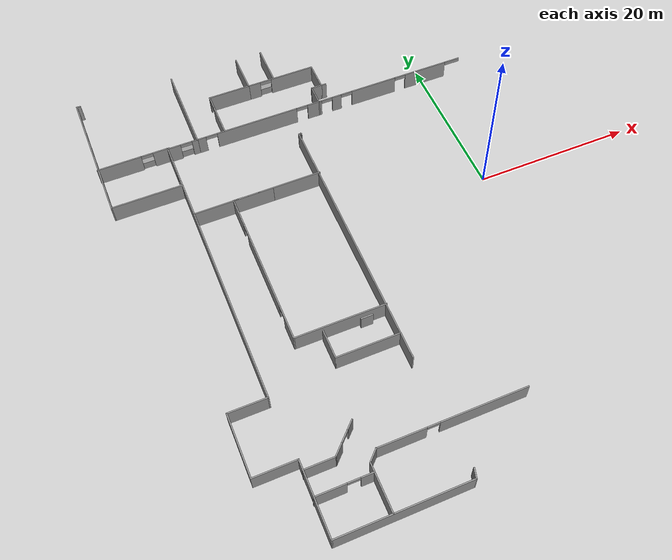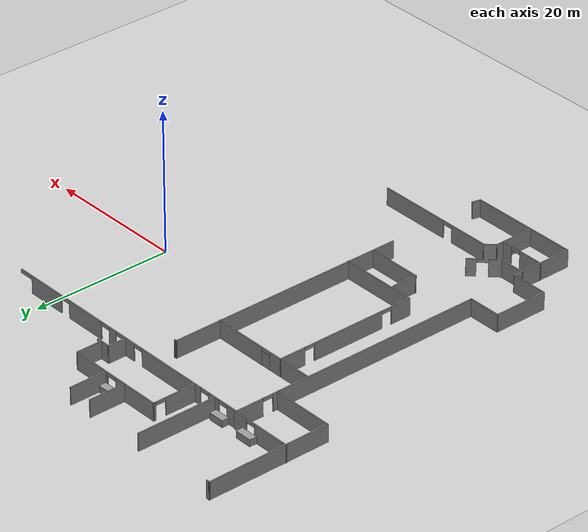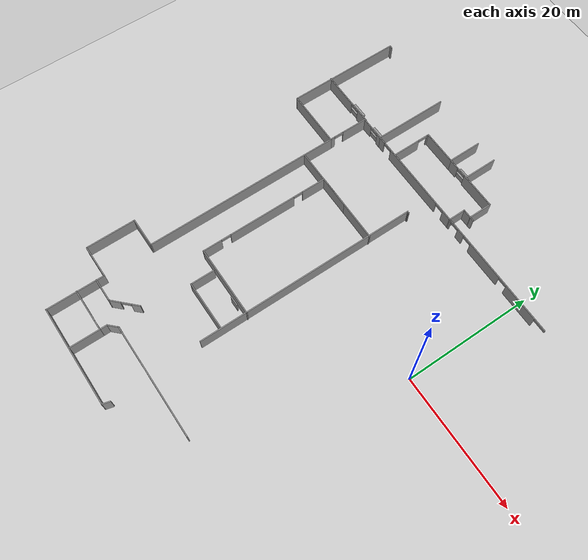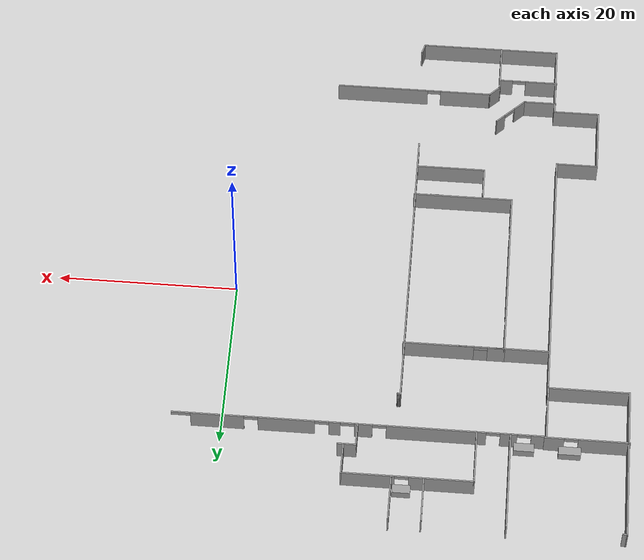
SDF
<sdf version="1.6">
 <world name="default">
  <model name="ground_plane">
   <static>1</static>
   <link name="link">
    <collision name="collision">
     <geometry><plane><normal>0 0 1</normal><size>100 100</size></plane></geometry>
     <surface><friction><ode><mu>100</mu><mu2>50</mu2></ode></friction></surface>
    </collision>
    <visual name="visual">
     <cast_shadows>0</cast_shadows>
     <geometry><plane><normal>0 0 1</normal><size>100 100</size></plane></geometry>
     <material>
      <script><uri>file://media/materials/scripts/gazebo.material</uri><name>Gazebo/Grey</name></script>
     </material>
    </visual>
   </link>
  </model>
  <model name="aule_N">
   <pose>0.1887 -1.4289 0 0 -0 0</pose>
   <link name="Door_6">
    <collision name="Door_6_Collision">
     <geometry><box><size>1.5 0.17 2</size></box></geometry>
     <pose>0 0 1 0 -0 0</pose>
    </collision>
    <visual name="Door_6_Visual">
     <pose>0 0 1 0 -0 0</pose>
     <geometry><box><size>1.5 0.17 2</size></box></geometry>
     <material>
      <script><uri>file://media/materials/scripts/gazebo.material</uri><name>Gazebo/Grey</name></script>
     </material>
    </visual>
    <pose>-21.8785 -12.0586 0 0 -0 0</pose>
   </link>
   <link name="Wall_108">
    <collision name="Wall_108_Collision">
     <geometry><box><size>11.5 0.15 2.5</size></box></geometry>
     <pose>0 0 1.25 0 -0 0</pose>
    </collision>
    <visual name="Wall_108_Visual">
     <pose>0 0 1.25 0 -0 0</pose>
     <geometry><box><size>11.5 0.15 2.5</size></box></geometry>
     <material>
      <script><uri>file://media/materials/scripts/gazebo.material</uri><name>Gazebo/Grey</name></script>
      <ambient>1 1 1 1</ambient>
     </material>
    </visual>
    <pose>-31.5274 25.2751 0 0 0 -1.5708</pose>
   </link>
   <link name="Wall_109">
    <pose>-33.4524 19.6001 0 0 -0 3.14159</pose>
    <visual name="Wall_109_Visual_0">
     <pose>-1.60516 0 1.25 0 -0 0</pose>
     <geometry><box><size>0.789669 0.15 2.5</size></box></geometry>
     <material>
      <script><uri>file://media/materials/scripts/gazebo.material</uri><name>Gazebo/Grey</name></script>
      <ambient>1 1 1 1</ambient>
     </material>
    </visual>
    <collision name="Wall_109_Collision_0">
     <geometry><box><size>0.789669 0.15 2.5</size></box></geometry>
     <pose>-1.60516 0 1.25 0 -0 0</pose>
    </collision>
    <visual name="Wall_109_Visual_1">
     <pose>1.14484 0 1.25 0 -0 0</pose>
     <geometry><box><size>1.71033 0.15 2.5</size></box></geometry>
     <material>
      <script><uri>file://media/materials/scripts/gazebo.material</uri><name>Gazebo/Grey</name></script>
      <ambient>1 1 1 1</ambient>
     </material>
    </visual>
    <collision name="Wall_109_Collision_1">
     <geometry><box><size>1.71033 0.15 2.5</size></box></geometry>
     <pose>1.14484 0 1.25 0 -0 0</pose>
    </collision>
    <visual name="Wall_109_Visual_2">
     <pose>-0.460331 0 2.25 0 -0 0</pose>
     <geometry><box><size>1.5 0.15 0.5</size></box></geometry>
     <material>
      <script><uri>file://media/materials/scripts/gazebo.material</uri><name>Gazebo/Grey</name></script>
      <ambient>1 1 1 1</ambient>
     </material>
    </visual>
    <collision name="Wall_109_Collision_2">
     <geometry><box><size>1.5 0.15 0.5</size></box></geometry>
     <pose>-0.460331 0 2.25 0 -0 0</pose>
    </collision>
   </link>
   <link name="Wall_110">
    <pose>-35.3774 16.4251 0 0 0 -1.5708</pose>
    <visual name="Wall_110_Visual_0">
     <pose>-1.20846 0 1.25 0 -0 0</pose>
     <geometry><box><size>4.08308 0.15 2.5</size></box></geometry>
     <material>
      <script><uri>file://media/materials/scripts/gazebo.material</uri><name>Gazebo/Grey</name></script>
      <ambient>1 1 1 1</ambient>
     </material>
    </visual>
    <collision name="Wall_110_Collision_0">
     <geometry><box><size>4.08308 0.15 2.5</size></box></geometry>
     <pose>-1.20846 0 1.25 0 -0 0</pose>
    </collision>
    <visual name="Wall_110_Visual_1">
     <pose>2.79154 0 1.25 0 -0 0</pose>
     <geometry><box><size>0.91692 0.15 2.5</size></box></geometry>
     <material>
      <script><uri>file://media/materials/scripts/gazebo.material</uri><name>Gazebo/Grey</name></script>
      <ambient>1 1 1 1</ambient>
     </material>
    </visual>
    <collision name="Wall_110_Collision_1">
     <geometry><box><size>0.91692 0.15 2.5</size></box></geometry>
     <pose>2.79154 0 1.25 0 -0 0</pose>
    </collision>
    <visual name="Wall_110_Visual_2">
     <pose>1.58308 0 2.25 0 -0 0</pose>
     <geometry><box><size>1.5 0.15 0.5</size></box></geometry>
     <material>
      <script><uri>file://media/materials/scripts/gazebo.material</uri><name>Gazebo/Grey</name></script>
      <ambient>1 1 1 1</ambient>
     </material>
    </visual>
    <collision name="Wall_110_Collision_2">
     <geometry><box><size>1.5 0.15 0.5</size></box></geometry>
     <pose>1.58308 0 2.25 0 -0 0</pose>
    </collision>
   </link>
   <link name="Wall_112">
    <pose>-39.7703 19.7027 0 0 -0 0</pose>
    <visual name="Wall_112_Visual_0">
     <pose>-1.82458 0 1.25 0 -0 0</pose>
     <geometry><box><size>5.60084 0.15 2.5</size></box></geometry>
     <material>
      <script><uri>file://media/materials/scripts/gazebo.material</uri><name>Gazebo/Grey</name></script>
      <ambient>1 1 1 1</ambient>
     </material>
    </visual>
    <collision name="Wall_112_Collision_0">
     <geometry><box><size>5.60084 0.15 2.5</size></box></geometry>
     <pose>-1.82458 0 1.25 0 -0 0</pose>
    </collision>
    <visual name="Wall_112_Visual_1">
     <pose>3.55042 0 1.25 0 -0 0</pose>
     <geometry><box><size>2.14915 0.15 2.5</size></box></geometry>
     <material>
      <script><uri>file://media/materials/scripts/gazebo.material</uri><name>Gazebo/Grey</name></script>
      <ambient>1 1 1 1</ambient>
     </material>
    </visual>
    <collision name="Wall_112_Collision_1">
     <geometry><box><size>2.14915 0.15 2.5</size></box></geometry>
     <pose>3.55042 0 1.25 0 -0 0</pose>
    </collision>
    <visual name="Wall_112_Visual_2">
     <pose>1.72585 0 2.25 0 -0 0</pose>
     <geometry><box><size>1.5 0.15 0.5</size></box></geometry>
     <material>
      <script><uri>file://media/materials/scripts/gazebo.material</uri><name>Gazebo/Grey</name></script>
      <ambient>1 1 1 1</ambient>
     </material>
    </visual>
    <collision name="Wall_112_Collision_2">
     <geometry><box><size>1.5 0.15 0.5</size></box></geometry>
     <pose>1.72585 0 2.25 0 -0 0</pose>
    </collision>
   </link>
   <link name="Wall_117">
    <pose>-13.2274 19.6001 0 0 -0 0</pose>
    <visual name="Wall_117_Visual_0">
     <pose>-17.7796 0 1.25 0 -0 0</pose>
     <geometry><box><size>1.19077 0.15 2.5</size></box></geometry>
     <material>
      <script><uri>file://media/materials/scripts/gazebo.material</uri><name>Gazebo/Grey</name></script>
      <ambient>1 1 1 1</ambient>
     </material>
    </visual>
    <collision name="Wall_117_Collision_0">
     <geometry><box><size>1.19077 0.15 2.5</size></box></geometry>
     <pose>-17.7796 0 1.25 0 -0 0</pose>
    </collision>
    <visual name="Wall_117_Visual_1">
     <pose>-10.3016 0 1.25 0 -0 0</pose>
     <geometry><box><size>10.7652 0.15 2.5</size></box></geometry>
     <material>
      <script><uri>file://media/materials/scripts/gazebo.material</uri><name>Gazebo/Grey</name></script>
      <ambient>1 1 1 1</ambient>
     </material>
    </visual>
    <collision name="Wall_117_Collision_1">
     <geometry><box><size>10.7652 0.15 2.5</size></box></geometry>
     <pose>-10.3016 0 1.25 0 -0 0</pose>
    </collision>
    <visual name="Wall_117_Visual_2">
     <pose>-2.44962 0 1.25 0 -0 0</pose>
     <geometry><box><size>1.93872 0.15 2.5</size></box></geometry>
     <material>
      <script><uri>file://media/materials/scripts/gazebo.material</uri><name>Gazebo/Grey</name></script>
      <ambient>1 1 1 1</ambient>
     </material>
    </visual>
    <collision name="Wall_117_Collision_2">
     <geometry><box><size>1.93872 0.15 2.5</size></box></geometry>
     <pose>-2.44962 0 1.25 0 -0 0</pose>
    </collision>
    <visual name="Wall_117_Visual_3">
     <pose>0.6526 0 1.25 0 -0 0</pose>
     <geometry><box><size>1.26572 0.15 2.5</size></box></geometry>
     <material>
      <script><uri>file://media/materials/scripts/gazebo.material</uri><name>Gazebo/Grey</name></script>
      <ambient>1 1 1 1</ambient>
     </material>
    </visual>
    <collision name="Wall_117_Collision_3">
     <geometry><box><size>1.26572 0.15 2.5</size></box></geometry>
     <pose>0.6526 0 1.25 0 -0 0</pose>
    </collision>
    <visual name="Wall_117_Visual_4">
     <pose>5.87513 0 1.25 0 -0 0</pose>
     <geometry><box><size>6.17934 0.15 2.5</size></box></geometry>
     <material>
      <script><uri>file://media/materials/scripts/gazebo.material</uri><name>Gazebo/Grey</name></script>
      <ambient>1 1 1 1</ambient>
     </material>
    </visual>
    <collision name="Wall_117_Collision_4">
     <geometry><box><size>6.17934 0.15 2.5</size></box></geometry>
     <pose>5.87513 0 1.25 0 -0 0</pose>
    </collision>
    <visual name="Wall_117_Visual_5">
     <pose>13.3706 0 1.25 0 -0 0</pose>
     <geometry><box><size>5.81158 0.15 2.5</size></box></geometry>
     <material>
      <script><uri>file://media/materials/scripts/gazebo.material</uri><name>Gazebo/Grey</name></script>
      <ambient>1 1 1 1</ambient>
     </material>
    </visual>
    <collision name="Wall_117_Collision_5">
     <geometry><box><size>5.81158 0.15 2.5</size></box></geometry>
     <pose>13.3706 0 1.25 0 -0 0</pose>
    </collision>
    <visual name="Wall_117_Visual_6">
     <pose>-16.4342 0 2.25 0 -0 0</pose>
     <geometry><box><size>1.5 0.15 0.5</size></box></geometry>
     <material>
      <script><uri>file://media/materials/scripts/gazebo.material</uri><name>Gazebo/Grey</name></script>
      <ambient>1 1 1 1</ambient>
     </material>
    </visual>
    <collision name="Wall_117_Collision_6">
     <geometry><box><size>1.5 0.15 0.5</size></box></geometry>
     <pose>-16.4342 0 2.25 0 -0 0</pose>
    </collision>
    <visual name="Wall_117_Visual_7">
     <pose>-4.16898 0 2.25 0 -0 0</pose>
     <geometry><box><size>1.5 0.15 0.5</size></box></geometry>
     <material>
      <script><uri>file://media/materials/scripts/gazebo.material</uri><name>Gazebo/Grey</name></script>
      <ambient>1 1 1 1</ambient>
     </material>
    </visual>
    <collision name="Wall_117_Collision_7">
     <geometry><box><size>1.5 0.15 0.5</size></box></geometry>
     <pose>-4.16898 0 2.25 0 -0 0</pose>
    </collision>
    <visual name="Wall_117_Visual_8">
     <pose>-0.73026 0 2.25 0 -0 0</pose>
     <geometry><box><size>1.5 0.15 0.5</size></box></geometry>
     <material>
      <script><uri>file://media/materials/scripts/gazebo.material</uri><name>Gazebo/Grey</name></script>
      <ambient>1 1 1 1</ambient>
     </material>
    </visual>
    <collision name="Wall_117_Collision_8">
     <geometry><box><size>1.5 0.15 0.5</size></box></geometry>
     <pose>-0.73026 0 2.25 0 -0 0</pose>
    </collision>
    <visual name="Wall_117_Visual_9">
     <pose>2.03546 0 2.25 0 -0 0</pose>
     <geometry><box><size>1.5 0.15 0.5</size></box></geometry>
     <material>
      <script><uri>file://media/materials/scripts/gazebo.material</uri><name>Gazebo/Grey</name></script>
      <ambient>1 1 1 1</ambient>
     </material>
    </visual>
    <collision name="Wall_117_Collision_9">
     <geometry><box><size>1.5 0.15 0.5</size></box></geometry>
     <pose>2.03546 0 2.25 0 -0 0</pose>
    </collision>
    <visual name="Wall_117_Visual_10">
     <pose>9.7148 0 2.25 0 -0 0</pose>
     <geometry><box><size>1.5 0.15 0.5</size></box></geometry>
     <material>
      <script><uri>file://media/materials/scripts/gazebo.material</uri><name>Gazebo/Grey</name></script>
      <ambient>1 1 1 1</ambient>
     </material>
    </visual>
    <collision name="Wall_117_Collision_10">
     <geometry><box><size>1.5 0.15 0.5</size></box></geometry>
     <pose>9.7148 0 2.25 0 -0 0</pose>
    </collision>
    <visual name="Wall_117_Visual_11">
     <pose>17.3257 0 2.25 0 -0 0</pose>
     <geometry><box><size>2.09862 0.15 0.5</size></box></geometry>
     <material>
      <script><uri>file://media/materials/scripts/gazebo.material</uri><name>Gazebo/Grey</name></script>
      <ambient>1 1 1 1</ambient>
     </material>
    </visual>
    <collision name="Wall_117_Collision_11">
     <geometry><box><size>2.09862 0.15 0.5</size></box></geometry>
     <pose>17.3257 0 2.25 0 -0 0</pose>
    </collision>
   </link>
   <link name="Wall_121">
    <collision name="Wall_121_Collision">
     <geometry><box><size>5.25 0.15 2.5</size></box></geometry>
     <pose>0 0 1.25 0 -0 0</pose>
    </collision>
    <visual name="Wall_121_Visual">
     <pose>0 0 1.25 0 -0 0</pose>
     <geometry><box><size>5.25 0.15 2.5</size></box></geometry>
     <material>
      <script><uri>file://media/materials/scripts/gazebo.material</uri><name>Gazebo/Grey</name></script>
      <ambient>1 1 1 1</ambient>
     </material>
    </visual>
    <pose>-22.5458 28.3464 0 0 0 -1.5708</pose>
   </link>
   <link name="Wall_122">
    <collision name="Wall_122_Collision">
     <geometry><box><size>5.5 0.15 2.5</size></box></geometry>
     <pose>0 0 1.25 0 -0 0</pose>
    </collision>
    <visual name="Wall_122_Visual">
     <pose>0 0 1.25 0 -0 0</pose>
     <geometry><box><size>5.5 0.15 2.5</size></box></geometry>
     <material>
      <script><uri>file://media/materials/scripts/gazebo.material</uri><name>Gazebo/Grey</name></script>
      <ambient>1 1 1 1</ambient>
     </material>
    </visual>
    <pose>-25.2208 25.7964 0 0 -0 3.14159</pose>
   </link>
   <link name="Wall_123">
    <pose>-27.8958 22.7464 0 0 0 -1.5708</pose>
    <visual name="Wall_123_Visual_0">
     <pose>-2.93611 0 1.25 0 -0 0</pose>
     <geometry><box><size>0.377789 0.15 2.5</size></box></geometry>
     <material>
      <script><uri>file://media/materials/scripts/gazebo.material</uri><name>Gazebo/Grey</name></script>
      <ambient>1 1 1 1</ambient>
     </material>
    </visual>
    <collision name="Wall_123_Collision_0">
     <geometry><box><size>0.377789 0.15 2.5</size></box></geometry>
     <pose>-2.93611 0 1.25 0 -0 0</pose>
    </collision>
    <visual name="Wall_123_Visual_1">
     <pose>0.938894 0 1.25 0 -0 0</pose>
     <geometry><box><size>4.37221 0.15 2.5</size></box></geometry>
     <material>
      <script><uri>file://media/materials/scripts/gazebo.material</uri><name>Gazebo/Grey</name></script>
      <ambient>1 1 1 1</ambient>
     </material>
    </visual>
    <collision name="Wall_123_Collision_1">
     <geometry><box><size>4.37221 0.15 2.5</size></box></geometry>
     <pose>0.938894 0 1.25 0 -0 0</pose>
    </collision>
    <visual name="Wall_123_Visual_2">
     <pose>-1.99721 0 2.25 0 -0 0</pose>
     <geometry><box><size>1.5 0.15 0.5</size></box></geometry>
     <material>
      <script><uri>file://media/materials/scripts/gazebo.material</uri><name>Gazebo/Grey</name></script>
      <ambient>1 1 1 1</ambient>
     </material>
    </visual>
    <collision name="Wall_123_Collision_2">
     <geometry><box><size>1.5 0.15 0.5</size></box></geometry>
     <pose>-1.99721 0 2.25 0 -0 0</pose>
    </collision>
   </link>
   <link name="Wall_125">
    <pose>-18.1208 25.7964 0 0 -0 0</pose>
    <visual name="Wall_125_Visual_0">
     <pose>-3.65851 0 1.25 0 -0 0</pose>
     <geometry><box><size>1.68298 0.15 2.5</size></box></geometry>
     <material>
      <script><uri>file://media/materials/scripts/gazebo.material</uri><name>Gazebo/Grey</name></script>
      <ambient>1 1 1 1</ambient>
     </material>
    </visual>
    <collision name="Wall_125_Collision_0">
     <geometry><box><size>1.68298 0.15 2.5</size></box></geometry>
     <pose>-3.65851 0 1.25 0 -0 0</pose>
    </collision>
    <visual name="Wall_125_Visual_1">
     <pose>1.59149 0 1.25 0 -0 0</pose>
     <geometry><box><size>5.81702 0.15 2.5</size></box></geometry>
     <material>
      <script><uri>file://media/materials/scripts/gazebo.material</uri><name>Gazebo/Grey</name></script>
      <ambient>1 1 1 1</ambient>
     </material>
    </visual>
    <collision name="Wall_125_Collision_1">
     <geometry><box><size>5.81702 0.15 2.5</size></box></geometry>
     <pose>1.59149 0 1.25 0 -0 0</pose>
    </collision>
    <visual name="Wall_125_Visual_2">
     <pose>-2.06702 0 2.25 0 -0 0</pose>
     <geometry><box><size>1.5 0.15 0.5</size></box></geometry>
     <material>
      <script><uri>file://media/materials/scripts/gazebo.material</uri><name>Gazebo/Grey</name></script>
      <ambient>1 1 1 1</ambient>
     </material>
    </visual>
    <collision name="Wall_125_Collision_2">
     <geometry><box><size>1.5 0.15 0.5</size></box></geometry>
     <pose>-2.06702 0 2.25 0 -0 0</pose>
    </collision>
   </link>
   <link name="Wall_126">
    <collision name="Wall_126_Collision">
     <geometry><box><size>3.75 0.15 2.5</size></box></geometry>
     <pose>0 0 1.25 0 -0 0</pose>
    </collision>
    <visual name="Wall_126_Visual">
     <pose>0 0 1.25 0 -0 0</pose>
     <geometry><box><size>3.75 0.15 2.5</size></box></geometry>
     <material>
      <script><uri>file://media/materials/scripts/gazebo.material</uri><name>Gazebo/Grey</name></script>
      <ambient>1 1 1 1</ambient>
     </material>
    </visual>
    <pose>-13.6958 23.9964 0 0 0 -1.5708</pose>
   </link>
   <link name="Wall_127">
    <collision name="Wall_127_Collision">
     <geometry><box><size>1.5 0.15 2.5</size></box></geometry>
     <pose>0 0 1.25 0 -0 0</pose>
    </collision>
    <visual name="Wall_127_Visual">
     <pose>0 0 1.25 0 -0 0</pose>
     <geometry><box><size>1.5 0.15 2.5</size></box></geometry>
     <material>
      <script><uri>file://media/materials/scripts/gazebo.material</uri><name>Gazebo/Grey</name></script>
      <ambient>1 1 1 1</ambient>
     </material>
    </visual>
    <pose>-14.3708 22.1964 0 0 -0 3.14159</pose>
   </link>
   <link name="Wall_128">
    <collision name="Wall_128_Collision">
     <geometry><box><size>2.75 0.15 2.5</size></box></geometry>
     <pose>0 0 1.25 0 -0 0</pose>
    </collision>
    <visual name="Wall_128_Visual">
     <pose>0 0 1.25 0 -0 0</pose>
     <geometry><box><size>2.75 0.15 2.5</size></box></geometry>
     <material>
      <script><uri>file://media/materials/scripts/gazebo.material</uri><name>Gazebo/Grey</name></script>
      <ambient>1 1 1 1</ambient>
     </material>
    </visual>
    <pose>-15.0458 20.8964 0 0 0 -1.5708</pose>
   </link>
   <link name="Wall_13">
    <collision name="Wall_13_Collision">
     <geometry><box><size>17.75 0.15 2.5</size></box></geometry>
     <pose>0 0 1.25 0 -0 0</pose>
    </collision>
    <visual name="Wall_13_Visual">
     <pose>0 0 1.25 0 -0 0</pose>
     <geometry><box><size>17.75 0.15 2.5</size></box></geometry>
     <material>
      <script><uri>file://media/materials/scripts/gazebo.material</uri><name>Gazebo/Grey</name></script>
      <ambient>1 1 1 1</ambient>
     </material>
    </visual>
    <pose>-44.2144 22.183 0 0 0 -1.5708</pose>
   </link>
   <link name="Wall_130">
    <collision name="Wall_130_Collision">
     <geometry><box><size>5.25 0.15 2.5</size></box></geometry>
     <pose>0 0 1.25 0 -0 0</pose>
    </collision>
    <visual name="Wall_130_Visual">
     <pose>0 0 1.25 0 -0 0</pose>
     <geometry><box><size>5.25 0.15 2.5</size></box></geometry>
     <material>
      <script><uri>file://media/materials/scripts/gazebo.material</uri><name>Gazebo/Grey</name></script>
      <ambient>1 1 1 1</ambient>
     </material>
    </visual>
    <pose>-19.0551 28.4267 0 0 0 -1.5708</pose>
   </link>
   <link name="Wall_132">
    <collision name="Wall_132_Collision">
     <geometry><box><size>0.75 0.15 2.5</size></box></geometry>
     <pose>0 0 1.25 0 -0 0</pose>
    </collision>
    <visual name="Wall_132_Visual">
     <pose>0 0 1.25 0 -0 0</pose>
     <geometry><box><size>0.75 0.15 2.5</size></box></geometry>
     <material>
      <script><uri>file://media/materials/scripts/gazebo.material</uri><name>Gazebo/Grey</name></script>
      <ambient>1 1 1 1</ambient>
     </material>
    </visual>
    <pose>-13.3958 22.1964 0 0 -0 0</pose>
   </link>
   <link name="Wall_14">
    <collision name="Wall_14_Collision">
     <geometry><box><size>9 0.15 2.5</size></box></geometry>
     <pose>0 0 1.25 0 -0 0</pose>
    </collision>
    <visual name="Wall_14_Visual">
     <pose>0 0 1.25 0 -0 0</pose>
     <geometry><box><size>9 0.15 2.5</size></box></geometry>
     <material>
      <script><uri>file://media/materials/scripts/gazebo.material</uri><name>Gazebo/Grey</name></script>
      <ambient>1 1 1 1</ambient>
     </material>
    </visual>
    <pose>-39.7894 13.383 0 0 -0 0</pose>
   </link>
   <link name="Wall_15">
    <collision name="Wall_15_Collision">
     <geometry><box><size>30.75 0.15 2.5</size></box></geometry>
     <pose>0 0 1.25 0 -0 0</pose>
    </collision>
    <visual name="Wall_15_Visual">
     <pose>0 0 1.25 0 -0 0</pose>
     <geometry><box><size>30.75 0.15 2.5</size></box></geometry>
     <material>
      <script><uri>file://media/materials/scripts/gazebo.material</uri><name>Gazebo/Grey</name></script>
      <ambient>1 1 1 1</ambient>
     </material>
    </visual>
    <pose>-35.3644 -1.91704 0 0 0 -1.5708</pose>
   </link>
   <link name="Wall_16">
    <collision name="Wall_16_Collision">
     <geometry><box><size>4.75 0.15 2.5</size></box></geometry>
     <pose>0 0 1.25 0 -0 0</pose>
    </collision>
    <visual name="Wall_16_Visual">
     <pose>0 0 1.25 0 -0 0</pose>
     <geometry><box><size>4.75 0.15 2.5</size></box></geometry>
     <material>
      <script><uri>file://media/materials/scripts/gazebo.material</uri><name>Gazebo/Grey</name></script>
      <ambient>1 1 1 1</ambient>
     </material>
    </visual>
    <pose>-37.6644 -17.217 0 0 -0 3.14159</pose>
   </link>
   <link name="Wall_17">
    <collision name="Wall_17_Collision">
     <geometry><box><size>7.75 0.15 2.5</size></box></geometry>
     <pose>0 0 1.25 0 -0 0</pose>
    </collision>
    <visual name="Wall_17_Visual">
     <pose>0 0 1.25 0 -0 0</pose>
     <geometry><box><size>7.75 0.15 2.5</size></box></geometry>
     <material>
      <script><uri>file://media/materials/scripts/gazebo.material</uri><name>Gazebo/Grey</name></script>
      <ambient>1 1 1 1</ambient>
     </material>
    </visual>
    <pose>-39.9644 -21.017 0 0 0 -1.5708</pose>
   </link>
   <link name="Wall_18">
    <collision name="Wall_18_Collision">
     <geometry><box><size>5.25 0.15 2.5</size></box></geometry>
     <pose>0 0 1.25 0 -0 0</pose>
    </collision>
    <visual name="Wall_18_Visual">
     <pose>0 0 1.25 0 -0 0</pose>
     <geometry><box><size>5.25 0.15 2.5</size></box></geometry>
     <material>
      <script><uri>file://media/materials/scripts/gazebo.material</uri><name>Gazebo/Grey</name></script>
      <ambient>1 1 1 1</ambient>
     </material>
    </visual>
    <pose>-37.4144 -24.817 0 0 -0 0</pose>
   </link>
   <link name="Wall_188">
    <collision name="Wall_188_Collision">
     <geometry><box><size>3.75 0.15 2.5</size></box></geometry>
     <pose>0 0 1.25 0 -0 0</pose>
    </collision>
    <visual name="Wall_188_Visual">
     <pose>0 0 1.25 0 -0 0</pose>
     <geometry><box><size>3.75 0.15 2.5</size></box></geometry>
     <material>
      <script><uri>file://media/materials/scripts/gazebo.material</uri><name>Gazebo/Grey</name></script>
      <ambient>1 1 1 1</ambient>
     </material>
    </visual>
    <pose>-33.1153 -26.0311 0 0 -0 0</pose>
   </link>
   <link name="Wall_189">
    <pose>-29.7774 -24.4931 0 0 -0 0.785398</pose>
    <visual name="Wall_189_Visual_0">
     <pose>-1.39685 0 1.25 0 -0 0</pose>
     <geometry><box><size>1.7063 0.15 2.5</size></box></geometry>
     <material>
      <script><uri>file://media/materials/scripts/gazebo.material</uri><name>Gazebo/Grey</name></script>
      <ambient>1 1 1 1</ambient>
     </material>
    </visual>
    <collision name="Wall_189_Collision_0">
     <geometry><box><size>1.7063 0.15 2.5</size></box></geometry>
     <pose>-1.39685 0 1.25 0 -0 0</pose>
    </collision>
    <visual name="Wall_189_Visual_1">
     <pose>1.60315 0 1.25 0 -0 0</pose>
     <geometry><box><size>1.2937 0.15 2.5</size></box></geometry>
     <material>
      <script><uri>file://media/materials/scripts/gazebo.material</uri><name>Gazebo/Grey</name></script>
      <ambient>1 1 1 1</ambient>
     </material>
    </visual>
    <collision name="Wall_189_Collision_1">
     <geometry><box><size>1.2937 0.15 2.5</size></box></geometry>
     <pose>1.60315 0 1.25 0 -0 0</pose>
    </collision>
    <visual name="Wall_189_Visual_2">
     <pose>0.2063 0 2.25 0 -0 0</pose>
     <geometry><box><size>1.5 0.15 0.5</size></box></geometry>
     <material>
      <script><uri>file://media/materials/scripts/gazebo.material</uri><name>Gazebo/Grey</name></script>
      <ambient>1 1 1 1</ambient>
     </material>
    </visual>
    <collision name="Wall_189_Collision_2">
     <geometry><box><size>1.5 0.15 0.5</size></box></geometry>
     <pose>0.2063 0 2.25 0 -0 0</pose>
    </collision>
   </link>
   <link name="Wall_19">
    <collision name="Wall_19_Collision">
     <geometry><box><size>9 0.15 2.5</size></box></geometry>
     <pose>0 0 1.25 0 -0 0</pose>
    </collision>
    <visual name="Wall_19_Visual">
     <pose>0 0 1.25 0 -0 0</pose>
     <geometry><box><size>9 0.15 2.5</size></box></geometry>
     <material>
      <script><uri>file://media/materials/scripts/gazebo.material</uri><name>Gazebo/Grey</name></script>
      <ambient>1 1 1 1</ambient>
     </material>
    </visual>
    <pose>-34.8644 -29.242 0 0 0 -1.5708</pose>
   </link>
   <link name="Wall_196">
    <pose>-31.6406 -29.0476 0 0 -0 0</pose>
    <visual name="Wall_196_Visual_0">
     <pose>-1.53431 0 1.25 0 -0 0</pose>
     <geometry><box><size>3.68138 0.15 2.5</size></box></geometry>
     <material>
      <script><uri>file://media/materials/scripts/gazebo.material</uri><name>Gazebo/Grey</name></script>
      <ambient>1 1 1 1</ambient>
     </material>
    </visual>
    <collision name="Wall_196_Collision_0">
     <geometry><box><size>3.68138 0.15 2.5</size></box></geometry>
     <pose>-1.53431 0 1.25 0 -0 0</pose>
    </collision>
    <visual name="Wall_196_Visual_1">
     <pose>2.59069 0 1.25 0 -0 0</pose>
     <geometry><box><size>1.56862 0.15 2.5</size></box></geometry>
     <material>
      <script><uri>file://media/materials/scripts/gazebo.material</uri><name>Gazebo/Grey</name></script>
      <ambient>1 1 1 1</ambient>
     </material>
    </visual>
    <collision name="Wall_196_Collision_1">
     <geometry><box><size>1.56862 0.15 2.5</size></box></geometry>
     <pose>2.59069 0 1.25 0 -0 0</pose>
    </collision>
    <visual name="Wall_196_Visual_2">
     <pose>1.05638 0 2.25 0 -0 0</pose>
     <geometry><box><size>1.5 0.15 0.5</size></box></geometry>
     <material>
      <script><uri>file://media/materials/scripts/gazebo.material</uri><name>Gazebo/Grey</name></script>
      <ambient>1 1 1 1</ambient>
     </material>
    </visual>
    <collision name="Wall_196_Collision_2">
     <geometry><box><size>1.5 0.15 0.5</size></box></geometry>
     <pose>1.05638 0 2.25 0 -0 0</pose>
    </collision>
   </link>
   <link name="Wall_197">
    <collision name="Wall_197_Collision">
     <geometry><box><size>1.25 0.15 2.5</size></box></geometry>
     <pose>0 0 1.25 0 -0 0</pose>
    </collision>
    <visual name="Wall_197_Visual">
     <pose>0 0 1.25 0 -0 0</pose>
     <geometry><box><size>1.25 0.15 2.5</size></box></geometry>
     <material>
      <script><uri>file://media/materials/scripts/gazebo.material</uri><name>Gazebo/Grey</name></script>
      <ambient>1 1 1 1</ambient>
     </material>
    </visual>
    <pose>-28.3406 -28.4976 0 0 -0 1.5708</pose>
   </link>
   <link name="Wall_198">
    <collision name="Wall_198_Collision">
     <geometry><box><size>1.75 0.15 2.5</size></box></geometry>
     <pose>0 0 1.25 0 -0 0</pose>
    </collision>
    <visual name="Wall_198_Visual">
     <pose>0 0 1.25 0 -0 0</pose>
     <geometry><box><size>1.75 0.15 2.5</size></box></geometry>
     <material>
      <script><uri>file://media/materials/scripts/gazebo.material</uri><name>Gazebo/Grey</name></script>
      <ambient>1 1 1 1</ambient>
     </material>
    </visual>
    <pose>-27.7749 -27.3819 0 0 -0 0.785398</pose>
   </link>
   <link name="Wall_199">
    <pose>-18.4092 -26.8162 0 0 -0 0</pose>
    <visual name="Wall_199_Visual_0">
     <pose>-5.96441 0 1.25 0 -0 0</pose>
     <geometry><box><size>5.82117 0.15 2.5</size></box></geometry>
     <material>
      <script><uri>file://media/materials/scripts/gazebo.material</uri><name>Gazebo/Grey</name></script>
      <ambient>1 1 1 1</ambient>
     </material>
    </visual>
    <collision name="Wall_199_Collision_0">
     <geometry><box><size>5.82117 0.15 2.5</size></box></geometry>
     <pose>-5.96441 0 1.25 0 -0 0</pose>
    </collision>
    <visual name="Wall_199_Visual_1">
     <pose>3.66059 0 1.25 0 -0 0</pose>
     <geometry><box><size>10.4288 0.15 2.5</size></box></geometry>
     <material>
      <script><uri>file://media/materials/scripts/gazebo.material</uri><name>Gazebo/Grey</name></script>
      <ambient>1 1 1 1</ambient>
     </material>
    </visual>
    <collision name="Wall_199_Collision_1">
     <geometry><box><size>10.4288 0.15 2.5</size></box></geometry>
     <pose>3.66059 0 1.25 0 -0 0</pose>
    </collision>
    <visual name="Wall_199_Visual_2">
     <pose>-2.30383 0 2.25 0 -0 0</pose>
     <geometry><box><size>1.5 0.15 0.5</size></box></geometry>
     <material>
      <script><uri>file://media/materials/scripts/gazebo.material</uri><name>Gazebo/Grey</name></script>
      <ambient>1 1 1 1</ambient>
     </material>
    </visual>
    <collision name="Wall_199_Collision_2">
     <geometry><box><size>1.5 0.15 0.5</size></box></geometry>
     <pose>-2.30383 0 2.25 0 -0 0</pose>
    </collision>
   </link>
   <link name="Wall_20">
    <collision name="Wall_20_Collision">
     <geometry><box><size>15.75 0.15 2.5</size></box></geometry>
     <pose>0 0 1.25 0 -0 0</pose>
    </collision>
    <visual name="Wall_20_Visual">
     <pose>0 0 1.25 0 -0 0</pose>
     <geometry><box><size>15.75 0.15 2.5</size></box></geometry>
     <material>
      <script><uri>file://media/materials/scripts/gazebo.material</uri><name>Gazebo/Grey</name></script>
      <ambient>1 1 1 1</ambient>
     </material>
    </visual>
    <pose>-27.0644 -33.667 0 0 -0 0</pose>
   </link>
   <link name="Wall_21">
    <collision name="Wall_21_Collision">
     <geometry><box><size>1.25 0.15 2.5</size></box></geometry>
     <pose>0 0 1.25 0 -0 0</pose>
    </collision>
    <visual name="Wall_21_Visual">
     <pose>0 0 1.25 0 -0 0</pose>
     <geometry><box><size>1.25 0.15 2.5</size></box></geometry>
     <material>
      <script><uri>file://media/materials/scripts/gazebo.material</uri><name>Gazebo/Grey</name></script>
      <ambient>1 1 1 1</ambient>
     </material>
    </visual>
    <pose>-19.122 -33.1358 0 0 -0 1.309</pose>
   </link>
   <link name="Wall_227">
    <collision name="Wall_227_Collision">
     <geometry><box><size>4.75 0.15 2.5</size></box></geometry>
     <pose>0 0 1.25 0 -0 0</pose>
    </collision>
    <visual name="Wall_227_Visual">
     <pose>0 0 1.25 0 -0 0</pose>
     <geometry><box><size>4.75 0.15 2.5</size></box></geometry>
     <material>
      <script><uri>file://media/materials/scripts/gazebo.material</uri><name>Gazebo/Grey</name></script>
      <ambient>1 1 1 1</ambient>
     </material>
    </visual>
    <pose>-28.3406 -31.3476 0 0 0 -1.5708</pose>
   </link>
   <link name="Wall_43">
    <collision name="Wall_43_Collision">
     <geometry><box><size>0.586314 0.15 2.5</size></box></geometry>
     <pose>0 0 1.25 0 -0 0</pose>
    </collision>
    <visual name="Wall_43_Visual">
     <pose>0 0 1.25 0 -0 0</pose>
     <geometry><box><size>0.586314 0.15 2.5</size></box></geometry>
     <material>
      <script><uri>file://media/materials/scripts/gazebo.material</uri><name>Gazebo/Grey</name></script>
      <ambient>1 1 1 1</ambient>
     </material>
    </visual>
    <pose>-43.9971 30.9642 0 0 -0 3.05558</pose>
   </link>
   <link name="Wall_45">
    <collision name="Wall_45_Collision">
     <geometry><box><size>34.5 0.15 2.5</size></box></geometry>
     <pose>0 0 1.25 0 -0 0</pose>
    </collision>
    <visual name="Wall_45_Visual">
     <pose>0 0 1.25 0 -0 0</pose>
     <geometry><box><size>34.5 0.15 2.5</size></box></geometry>
     <material>
      <script><uri>file://media/materials/scripts/gazebo.material</uri><name>Gazebo/Grey</name></script>
      <ambient>1 1 1 1</ambient>
     </material>
    </visual>
    <pose>-19.4071 -1.71111 0 0 0 -1.5708</pose>
   </link>
   <link name="Wall_49">
    <collision name="Wall_49_Collision">
     <geometry><box><size>0.25 0.15 2.5</size></box></geometry>
     <pose>0 0 1.25 0 -0 0</pose>
    </collision>
    <visual name="Wall_49_Visual">
     <pose>0 0 1.25 0 -0 0</pose>
     <geometry><box><size>0.25 0.15 2.5</size></box></geometry>
     <material>
      <script><uri>file://media/materials/scripts/gazebo.material</uri><name>Gazebo/Grey</name></script>
      <ambient>1 1 1 1</ambient>
     </material>
    </visual>
    <pose>-19.1442 15.4156 0 0 0 -1.309</pose>
   </link>
   <link name="Wall_50">
    <collision name="Wall_50_Collision">
     <geometry><box><size>0.25 0.15 2.5</size></box></geometry>
     <pose>0 0 1.25 0 -0 0</pose>
    </collision>
    <visual name="Wall_50_Visual">
     <pose>0 0 1.25 0 -0 0</pose>
     <geometry><box><size>0.25 0.15 2.5</size></box></geometry>
     <material>
      <script><uri>file://media/materials/scripts/gazebo.material</uri><name>Gazebo/Grey</name></script>
      <ambient>1 1 1 1</ambient>
     </material>
    </visual>
    <pose>-19.1442 15.4156 0 0 -0 1.8326</pose>
   </link>
   <link name="Wall_51">
    <collision name="Wall_51_Collision">
     <geometry><box><size>0.25 0.15 2.5</size></box></geometry>
     <pose>0 0 1.25 0 -0 0</pose>
    </collision>
    <visual name="Wall_51_Visual">
     <pose>0 0 1.25 0 -0 0</pose>
     <geometry><box><size>0.25 0.15 2.5</size></box></geometry>
     <material>
      <script><uri>file://media/materials/scripts/gazebo.material</uri><name>Gazebo/Grey</name></script>
      <ambient>1 1 1 1</ambient>
     </material>
    </visual>
    <pose>-19.1442 15.4156 0 0 0 -1.309</pose>
   </link>
   <link name="Wall_52">
    <collision name="Wall_52_Collision">
     <geometry><box><size>0.442303 0.15 2.5</size></box></geometry>
     <pose>0 0 1.25 0 -0 0</pose>
    </collision>
    <visual name="Wall_52_Visual">
     <pose>0 0 1.25 0 -0 0</pose>
     <geometry><box><size>0.442303 0.15 2.5</size></box></geometry>
     <material>
      <script><uri>file://media/materials/scripts/gazebo.material</uri><name>Gazebo/Grey</name></script>
      <ambient>1 1 1 1</ambient>
     </material>
    </visual>
    <pose>-19.2692 15.4156 0 0 -0 2.80481</pose>
   </link>
   <link name="Wall_60">
    <pose>-24.8555 8.68568 0 0 -0 3.14159</pose>
    <visual name="Wall_60_Visual_0">
     <pose>-1.70985 0 1.25 0 -0 0</pose>
     <geometry><box><size>7.83031 0.15 2.5</size></box></geometry>
     <material>
      <script><uri>file://media/materials/scripts/gazebo.material</uri><name>Gazebo/Grey</name></script>
      <ambient>1 1 1 1</ambient>
     </material>
    </visual>
    <collision name="Wall_60_Collision_0">
     <geometry><box><size>7.83031 0.15 2.5</size></box></geometry>
     <pose>-1.70985 0 1.25 0 -0 0</pose>
    </collision>
    <visual name="Wall_60_Visual_1">
     <pose>4.66516 0 1.25 0 -0 0</pose>
     <geometry><box><size>1.91969 0.15 2.5</size></box></geometry>
     <material>
      <script><uri>file://media/materials/scripts/gazebo.material</uri><name>Gazebo/Grey</name></script>
      <ambient>1 1 1 1</ambient>
     </material>
    </visual>
    <collision name="Wall_60_Collision_1">
     <geometry><box><size>1.91969 0.15 2.5</size></box></geometry>
     <pose>4.66516 0 1.25 0 -0 0</pose>
    </collision>
    <visual name="Wall_60_Visual_2">
     <pose>2.95531 0 2.25 0 -0 0</pose>
     <geometry><box><size>1.5 0.15 0.5</size></box></geometry>
     <material>
      <script><uri>file://media/materials/scripts/gazebo.material</uri><name>Gazebo/Grey</name></script>
      <ambient>1 1 1 1</ambient>
     </material>
    </visual>
    <collision name="Wall_60_Collision_2">
     <geometry><box><size>1.5 0.15 0.5</size></box></geometry>
     <pose>2.95531 0 2.25 0 -0 0</pose>
    </collision>
   </link>
   <link name="Wall_61">
    <pose>-30.4055 -1.48932 0 0 0 -1.5708</pose>
    <visual name="Wall_61_Visual_0">
     <pose>-8.32858 0 1.25 0 -0 0</pose>
     <geometry><box><size>3.84285 0.15 2.5</size></box></geometry>
     <material>
      <script><uri>file://media/materials/scripts/gazebo.material</uri><name>Gazebo/Grey</name></script>
      <ambient>1 1 1 1</ambient>
     </material>
    </visual>
    <collision name="Wall_61_Collision_0">
     <geometry><box><size>3.84285 0.15 2.5</size></box></geometry>
     <pose>-8.32858 0 1.25 0 -0 0</pose>
    </collision>
    <visual name="Wall_61_Visual_1">
     <pose>0.415385 0 1.25 0 -0 0</pose>
     <geometry><box><size>10.6451 0.15 2.5</size></box></geometry>
     <material>
      <script><uri>file://media/materials/scripts/gazebo.material</uri><name>Gazebo/Grey</name></script>
      <ambient>1 1 1 1</ambient>
     </material>
    </visual>
    <collision name="Wall_61_Collision_1">
     <geometry><box><size>10.6451 0.15 2.5</size></box></geometry>
     <pose>0.415385 0 1.25 0 -0 0</pose>
    </collision>
    <visual name="Wall_61_Visual_2">
     <pose>8.74396 0 1.25 0 -0 0</pose>
     <geometry><box><size>3.01208 0.15 2.5</size></box></geometry>
     <material>
      <script><uri>file://media/materials/scripts/gazebo.material</uri><name>Gazebo/Grey</name></script>
      <ambient>1 1 1 1</ambient>
     </material>
    </visual>
    <collision name="Wall_61_Collision_2">
     <geometry><box><size>3.01208 0.15 2.5</size></box></geometry>
     <pose>8.74396 0 1.25 0 -0 0</pose>
    </collision>
    <visual name="Wall_61_Visual_3">
     <pose>-5.65715 0 2.25 0 -0 0</pose>
     <geometry><box><size>1.5 0.15 0.5</size></box></geometry>
     <material>
      <script><uri>file://media/materials/scripts/gazebo.material</uri><name>Gazebo/Grey</name></script>
      <ambient>1 1 1 1</ambient>
     </material>
    </visual>
    <collision name="Wall_61_Collision_3">
     <geometry><box><size>1.5 0.15 0.5</size></box></geometry>
     <pose>-5.65715 0 2.25 0 -0 0</pose>
    </collision>
    <visual name="Wall_61_Visual_4">
     <pose>6.48792 0 2.25 0 -0 0</pose>
     <geometry><box><size>1.5 0.15 0.5</size></box></geometry>
     <material>
      <script><uri>file://media/materials/scripts/gazebo.material</uri><name>Gazebo/Grey</name></script>
      <ambient>1 1 1 1</ambient>
     </material>
    </visual>
    <collision name="Wall_61_Collision_4">
     <geometry><box><size>1.5 0.15 0.5</size></box></geometry>
     <pose>6.48792 0 2.25 0 -0 0</pose>
    </collision>
   </link>
   <link name="Wall_62">
    <collision name="Wall_62_Collision">
     <geometry><box><size>11.25 0.15 2.5</size></box></geometry>
     <pose>0 0 1.25 0 -0 0</pose>
    </collision>
    <visual name="Wall_62_Visual">
     <pose>0 0 1.25 0 -0 0</pose>
     <geometry><box><size>11.25 0.15 2.5</size></box></geometry>
     <material>
      <script><uri>file://media/materials/scripts/gazebo.material</uri><name>Gazebo/Grey</name></script>
      <ambient>1 1 1 1</ambient>
     </material>
    </visual>
    <pose>-24.8555 -11.6643 0 0 -0 0</pose>
   </link>
   <link name="Wall_66">
    <collision name="Wall_66_Collision">
     <geometry><box><size>3.75 0.15 2.5</size></box></geometry>
     <pose>0 0 1.25 0 -0 0</pose>
    </collision>
    <visual name="Wall_66_Visual">
     <pose>0 0 1.25 0 -0 0</pose>
     <geometry><box><size>3.75 0.15 2.5</size></box></geometry>
     <material>
      <script><uri>file://media/materials/scripts/gazebo.material</uri><name>Gazebo/Grey</name></script>
      <ambient>1 1 1 1</ambient>
     </material>
    </visual>
    <pose>-27.1083 -13.8586 0 0 0 -1.5708</pose>
   </link>
   <link name="Wall_67">
    <collision name="Wall_67_Collision">
     <geometry><box><size>7.75 0.15 2.5</size></box></geometry>
     <pose>0 0 1.25 0 -0 0</pose>
    </collision>
    <visual name="Wall_67_Visual">
     <pose>0 0 1.25 0 -0 0</pose>
     <geometry><box><size>7.75 0.15 2.5</size></box></geometry>
     <material>
      <script><uri>file://media/materials/scripts/gazebo.material</uri><name>Gazebo/Grey</name></script>
      <ambient>1 1 1 1</ambient>
     </material>
    </visual>
    <pose>-23.3083 -15.6586 0 0 -0 0</pose>
   </link>
   <static>1</static>
  </model>
  <model name="wall1">
   <pose>-27.6647 7.25229 0 0 -0 0</pose>
   <link name="Wall_5">
    <collision name="Wall_5_Collision">
     <geometry><box><size>5 0.15 2.5</size></box></geometry>
     <pose>0 0 1.25 0 -0 0</pose>
    </collision>
    <visual name="Wall_5_Visual">
     <pose>0 0 1.25 0 -0 0</pose>
     <geometry><box><size>5 0.15 2.5</size></box></geometry>
     <material>
      <script><uri>file://media/materials/scripts/gazebo.material</uri><name>Gazebo/Grey</name></script>
      <ambient>1 1 1 1</ambient>
     </material>
     <meta><layer>0</layer></meta>
    </visual>
   </link>
   <static>1</static>
  </model>
  <model name="wall1_0">
   <pose>-32.6546 7.23731 0 0 -0 0</pose>
   <link name="Wall_5">
    <collision name="Wall_5_Collision">
     <geometry><box><size>5 0.15 2.5</size></box></geometry>
     <pose>0 0 1.25 0 -0 0</pose>
    </collision>
    <visual name="Wall_5_Visual">
     <pose>0 0 1.25 0 -0 0</pose>
     <geometry><box><size>5 0.15 2.5</size></box></geometry>
     <material>
      <script><uri>file://media/materials/scripts/gazebo.material</uri><name>Gazebo/Grey</name></script>
      <ambient>1 1 1 1</ambient>
     </material>
     <meta><layer>0</layer></meta>
    </visual>
   </link>
   <static>1</static>
  </model>
  <model name="unit_box_7">
   <pose>-20.0161 24.9956 0.5 0 -0 1.4e-05</pose>
   <link name="link">
    <inertial>
     <mass>1</mass>
     <inertia>
      <ixx>0.166667</ixx>
      <ixy>0</ixy>
      <ixz>0</ixz>
      <iyy>0.166667</iyy>
      <iyz>0</iyz>
      <izz>0.166667</izz>
     </inertia>
    </inertial>
    <collision name="collision"><geometry><box><size>1.95857 1 1</size></box></geometry></collision>
    <visual name="visual">
     <geometry><box><size>1.95857 1 1</size></box></geometry>
     <material>
      <script><name>Gazebo/Grey</name><uri>file://media/materials/scripts/gazebo.material</uri></script>
     </material>
    </visual>
   </link>
  </model>
  <model name="unit_box_8">
   <pose>-32.855 18.7945 0.499969 0 -2.7e-05 -2.4e-05</pose>
   <link name="link">
    <inertial>
     <mass>1</mass>
     <inertia>
      <ixx>0.166667</ixx>
      <ixy>0</ixy>
      <ixz>0</ixz>
      <iyy>0.166667</iyy>
      <iyz>0</iyz>
      <izz>0.166667</izz>
     </inertia>
    </inertial>
    <collision name="collision"><geometry><box><size>2.22555 1 1</size></box></geometry></collision>
    <visual name="visual">
     <geometry><box><size>2.22555 1 1</size></box></geometry>
     <material>
      <script><name>Gazebo/Grey</name><uri>file://media/materials/scripts/gazebo.material</uri></script>
     </material>
    </visual>
   </link>
  </model>
  <model name="unit_box_9">
   <pose>-37.7908 18.8684 0.5 -0 -0 -3e-06</pose>
   <link name="link">
    <inertial>
     <mass>1</mass>
     <inertia>
      <ixx>0.166667</ixx>
      <ixy>0</ixy>
      <ixz>0</ixz>
      <iyy>0.166667</iyy>
      <iyz>0</iyz>
      <izz>0.166667</izz>
     </inertia>
    </inertial>
    <collision name="collision"><geometry><box><size>2.421 1 1</size></box></geometry></collision>
    <visual name="visual">
     <geometry><box><size>2.421 1 1</size></box></geometry>
     <material>
      <script><name>Gazebo/Grey</name><uri>file://media/materials/scripts/gazebo.material</uri></script>
     </material>
    </visual>
   </link>
  </model>
 </world>
</sdf>
